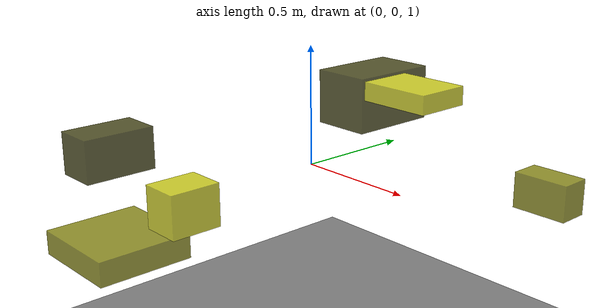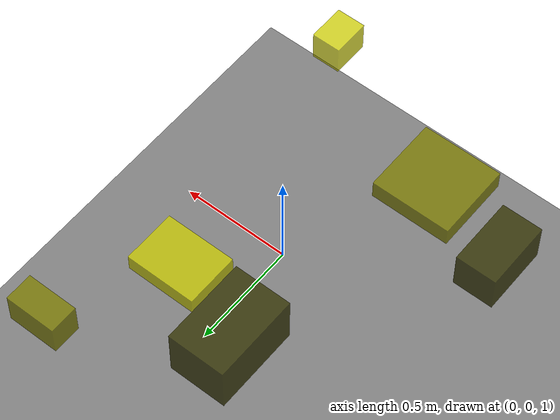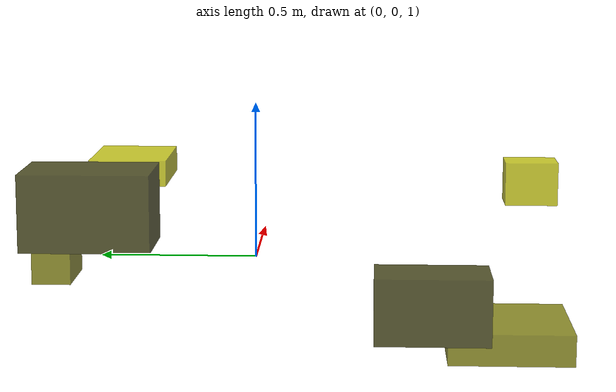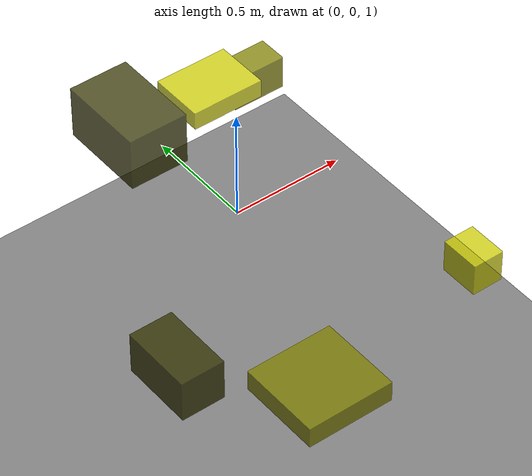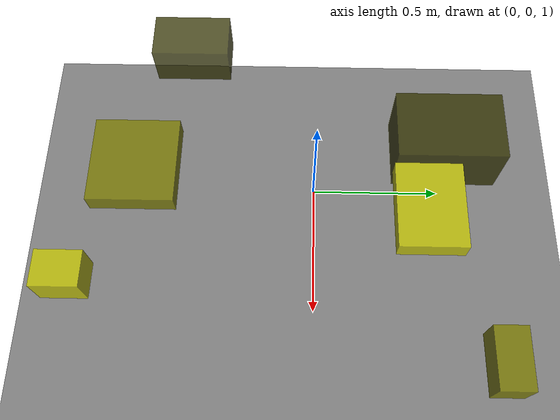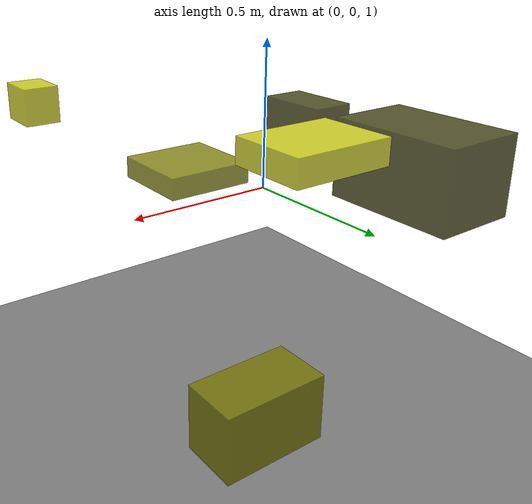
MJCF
<?xml version="1.0"?>
<mujoco model="obstacle_scene">
  <compiler angle="radian" coordinate="local"/>
  <option timestep="0.001" gravity="0 0 -9.81"/>

  <asset>
    <material name="obstacle_mat" rgba="0.8 0.8 0.0 0.8"/>
    <material name="ground_mat" rgba="0.5 0.5 0.5 1"/>
  </asset>

  <worldbody>
    <!-- Ground plane -->
    <geom name="ground" type="plane" size="3 3 0.1" material="ground_mat"/>

    <!-- Obstacles -->
    <body name="obstacle_0" pos="-0.148896 0.513732 1.185916">
      <geom name="obs_0" type="box" size="0.135107 0.204264 0.122104" rgba="0.2 0.2 0.0 0.8"/>
    </body>
    <body name="obstacle_1" pos="-0.214155 -0.794034 0.808169">
      <geom name="obs_1" type="box" size="0.198747 0.191458 0.048676" rgba="0.5 0.5 0.0 0.8"/>
    </body>
    <body name="obstacle_2" pos="0.427923 -0.914489 1.180520">
      <geom name="obs_2" type="box" size="0.068585 0.088076 0.072676" rgba="0.8 0.8 0.0 0.8"/>
    </body>
    <body name="obstacle_3" pos="-0.695231 -0.541357 1.015355">
      <geom name="obs_3" type="box" size="0.097267 0.163790 0.095735" rgba="0.2 0.2 0.0 0.8"/>
    </body>
    <body name="obstacle_4" pos="0.647446 0.770869 0.855492">
      <geom name="obs_4" type="box" size="0.126104 0.069766 0.080060" rgba="0.5 0.5 0.0 0.8"/>
    </body>
    <body name="obstacle_5" pos="0.181402 0.417668 1.265196">
      <geom name="obs_5" type="box" size="0.164270 0.124691 0.041101" rgba="0.8 0.8 0.0 0.8"/>
    </body>
  </worldbody>
</mujoco>
